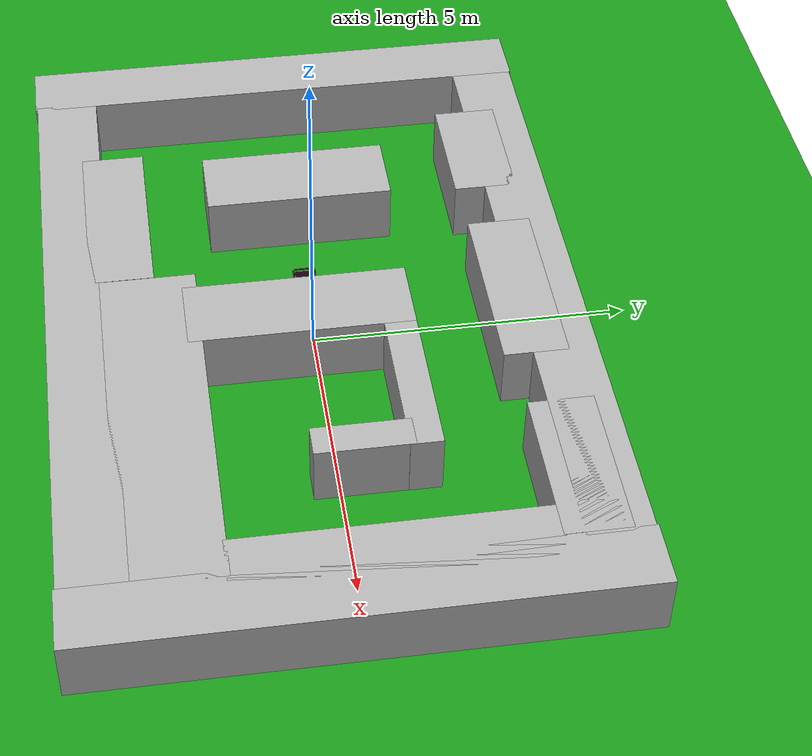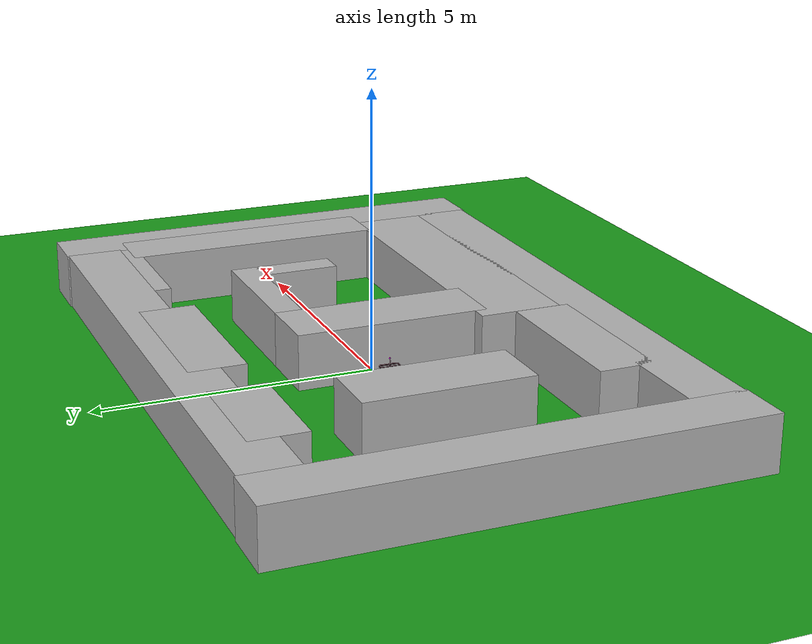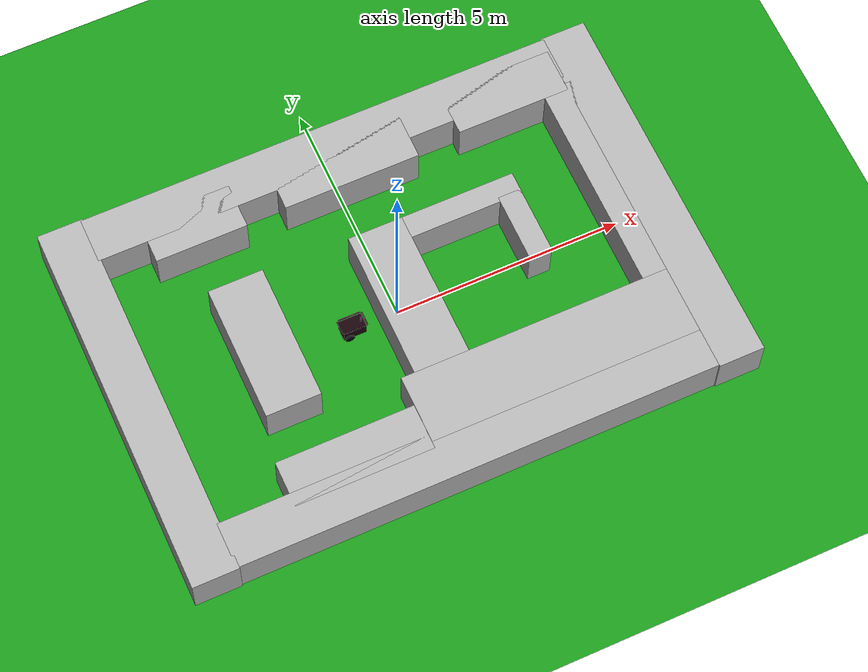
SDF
<?xml version="1.0" ?>
<sdf version='1.9'>
  <world name='empty'>
    <include>
            <uri>home/kifelix/alexx_ws/src/alexx_py/robot/bb_alexx.sdf</uri> <!-- Caminho relativo -->
            <pose>-1 0 0.2 0 0 0</pose> <!-- Ajuste a posição inicial -->
    </include>
    <scene>
      <ambient>0.4 0.4 0.4 1</ambient>
      <background>0.6 0.8 0.6 1</background>
      <shadows>true</shadows>
    </scene>
    <gravity>0 0 -9.8</gravity>
    <plugin name='ignition::gazebo::systems::Physics' filename='libignition-gazebo-physics-system.so'/>
    <plugin name='ignition::gazebo::systems::UserCommands' filename='libignition-gazebo-user-commands-system.so'/>
    <plugin name='ignition::gazebo::systems::SceneBroadcaster' filename='libignition-gazebo-scene-broadcaster-system.so'/>
    <plugin name='ignition::gazebo::systems::Sensors' filename='libignition-gazebo-sensors-system.so'>
      <render_engine>ogre2</render_engine>
    </plugin>
        <model name="ground_plane">
      <static>true</static>
      <link name="link">
        <collision name="collision">
          <geometry><plane><normal>0 0 1</normal><size>50 50</size></plane></geometry>
        </collision>
        <visual name="visual">
          <geometry><plane><normal>0 0 1</normal><size>50 50</size></plane></geometry>
          <material>
            <ambient>0.1 0.4 0.1 1</ambient>
            <diffuse>0.1 0.6 0.1 1</diffuse>
            <specular>0 0 0 1</specular>
          </material>
        </visual>
      </link>
    </model>
    <model name='box'>
      <pose>5.69981 0 0.5 0 -0 0</pose>
      <link name='box_link'>
        <inertial>
          <inertia>
            <ixx>0.16666</ixx>
            <ixy>0</ixy>
            <ixz>0</ixz>
            <iyy>0.16666</iyy>
            <iyz>0</iyz>
            <izz>0.16666</izz>
          </inertia>
          <mass>1</mass>
          <pose>0 0 0 0 -0 0</pose>
        </inertial>
        <collision name='box_collision'>
          <geometry>
            <box>
              <size>1 8.3 1</size>
            </box>
          </geometry>
          <surface>
            <friction>
              <ode/>
            </friction>
            <bounce/>
            <contact/>
          </surface>
        </collision>
        <visual name='box_visual'>
          <geometry>
            <box>
              <size>1 8.3 1</size>
            </box>
          </geometry>
          <material>
            <ambient>0.3 0.3 0.3 1</ambient>
            <diffuse>0.7 0.7 0.7 1</diffuse>
            <specular>1 1 1 1</specular>
          </material>
        </visual>
        <pose>0 0 0 0 -0 0</pose>
        <enable_wind>false</enable_wind>
      </link>
      <static>false</static>
      <self_collide>false</self_collide>
    </model>
    <model name='box_0'>
      <pose>0 3.62417 0.5 0 -0 0</pose>
      <link name='box_link'>
        <inertial>
          <inertia>
            <ixx>0.16666</ixx>
            <ixy>0</ixy>
            <ixz>0</ixz>
            <iyy>0.16666</iyy>
            <iyz>0</iyz>
            <izz>0.16666</izz>
          </inertia>
          <mass>1</mass>
          <pose>0 0 0 0 -0 0</pose>
        </inertial>
        <collision name='box_collision'>
          <geometry>
            <box>
              <size>10.5 1 1</size>
            </box>
          </geometry>
          <surface>
            <friction>
              <ode/>
            </friction>
            <bounce/>
            <contact/>
          </surface>
        </collision>
        <visual name='box_visual'>
          <geometry>
            <box>
              <size>10.5 1 1</size>
            </box>
          </geometry>
          <material>
            <ambient>0.3 0.3 0.3 1</ambient>
            <diffuse>0.7 0.7 0.7 1</diffuse>
            <specular>1 1 1 1</specular>
          </material>
        </visual>
        <pose>0 0 0 0 -0 0</pose>
        <enable_wind>false</enable_wind>
      </link>
      <static>false</static>
      <self_collide>false</self_collide>
    </model>
    <model name='box_1'>
      <pose>-5.69083 0 0.5 0 -0 0</pose>
      <link name='box_link'>
        <inertial>
          <inertia>
            <ixx>0.16666</ixx>
            <ixy>0</ixy>
            <ixz>0</ixz>
            <iyy>0.16666</iyy>
            <iyz>0</iyz>
            <izz>0.16666</izz>
          </inertia>
          <mass>1</mass>
          <pose>0 0 0 0 -0 0</pose>
        </inertial>
        <collision name='box_collision'>
          <geometry>
            <box>
              <size>1 8.3 1</size>
            </box>
          </geometry>
          <surface>
            <friction>
              <ode/>
            </friction>
            <bounce/>
            <contact/>
          </surface>
        </collision>
        <visual name='box_visual'>
          <geometry>
            <box>
              <size>1 8.3 1</size>
            </box>
          </geometry>
          <material>
            <ambient>0.3 0.3 0.3 1</ambient>
            <diffuse>0.7 0.7 0.7 1</diffuse>
            <specular>1 1 1 1</specular>
          </material>
        </visual>
        <pose>0 0 0 0 -0 0</pose>
        <enable_wind>false</enable_wind>
      </link>
      <static>false</static>
      <self_collide>false</self_collide>
    </model>
    <model name='box_2'>
      <pose>0 -3.62085 0.5 0 -0 0</pose>
      <link name='box_link'>
        <inertial>
          <inertia>
            <ixx>0.16666</ixx>
            <ixy>0</ixy>
            <ixz>0</ixz>
            <iyy>0.16666</iyy>
            <iyz>0</iyz>
            <izz>0.16666</izz>
          </inertia>
          <mass>1</mass>
          <pose>0 0 0 0 -0 0</pose>
        </inertial>
        <collision name='box_collision'>
          <geometry>
            <box>
              <size>10.5 1 1</size>
            </box>
          </geometry>
          <surface>
            <friction>
              <ode/>
            </friction>
            <bounce/>
            <contact/>
          </surface>
        </collision>
        <visual name='box_visual'>
          <geometry>
            <box>
              <size>10.5 1 1</size>
            </box>
          </geometry>
          <material>
            <ambient>0.3 0.3 0.3 1</ambient>
            <diffuse>0.7 0.7 0.7 1</diffuse>
            <specular>1 1 1 1</specular>
          </material>
        </visual>
        <pose>0 0 0 0 -0 0</pose>
        <enable_wind>false</enable_wind>
      </link>
      <static>false</static>
      <self_collide>false</self_collide>
    </model>
    <model name='box_3'>
      <pose>2.28939 -2.51854 0.5 0 -0 0</pose>
      <link name='box_link'>
        <inertial>
          <inertia>
            <ixx>0.16666</ixx>
            <ixy>0</ixy>
            <ixz>0</ixz>
            <iyy>0.16666</iyy>
            <iyz>0</iyz>
            <izz>0.16666</izz>
          </inertia>
          <mass>1</mass>
          <pose>0 0 0 0 -0 0</pose>
        </inertial>
        <collision name='box_collision'>
          <geometry>
            <box>
              <size>6 1.5 1</size>
            </box>
          </geometry>
          <surface>
            <friction>
              <ode/>
            </friction>
            <bounce/>
            <contact/>
          </surface>
        </collision>
        <visual name='box_visual'>
          <geometry>
            <box>
              <size>6 1.5 1</size>
            </box>
          </geometry>
          <material>
            <ambient>0.3 0.3 0.3 1</ambient>
            <diffuse>0.7 0.7 0.7 1</diffuse>
            <specular>1 1 1 1</specular>
          </material>
        </visual>
        <pose>0 0 0 0 -0 0</pose>
        <enable_wind>false</enable_wind>
      </link>
      <static>false</static>
      <self_collide>false</self_collide>
    </model>
    <model name='box_4'>
      <pose>-2.21527 -2.91204 0.5 0 -0 0</pose>
      <link name='box_link'>
        <inertial>
          <inertia>
            <ixx>0.16666</ixx>
            <ixy>0</ixy>
            <ixz>0</ixz>
            <iyy>0.16666</iyy>
            <iyz>0</iyz>
            <izz>0.16666</izz>
          </inertia>
          <mass>1</mass>
          <pose>0 0 0 0 -0 0</pose>
        </inertial>
        <collision name='box_collision'>
          <geometry>
            <box>
              <size>3 1 1</size>
            </box>
          </geometry>
          <surface>
            <friction>
              <ode/>
            </friction>
            <bounce/>
            <contact/>
          </surface>
        </collision>
        <visual name='box_visual'>
          <geometry>
            <box>
              <size>3 1 1</size>
            </box>
          </geometry>
          <material>
            <ambient>0.3 0.3 0.3 1</ambient>
            <diffuse>0.7 0.7 0.7 1</diffuse>
            <specular>1 1 1 1</specular>
          </material>
        </visual>
        <pose>0 0 0 0 -0 0</pose>
        <enable_wind>false</enable_wind>
      </link>
      <static>false</static>
      <self_collide>false</self_collide>
    </model>
    <model name='box_5'>
      <pose>-3.17475 3.13281 0.5 0 -0 0</pose>
      <link name='box_link'>
        <inertial>
          <inertia>
            <ixx>0.16666</ixx>
            <ixy>0</ixy>
            <ixz>0</ixz>
            <iyy>0.16666</iyy>
            <iyz>0</iyz>
            <izz>0.16666</izz>
          </inertia>
          <mass>1</mass>
          <pose>0 0 0 0 -0 0</pose>
        </inertial>
        <collision name='box_collision'>
          <geometry>
            <box>
              <size>2 1 1</size>
            </box>
          </geometry>
          <surface>
            <friction>
              <ode/>
            </friction>
            <bounce/>
            <contact/>
          </surface>
        </collision>
        <visual name='box_visual'>
          <geometry>
            <box>
              <size>2 1 1</size>
            </box>
          </geometry>
          <material>
            <ambient>0.3 0.3 0.3 1</ambient>
            <diffuse>0.7 0.7 0.7 1</diffuse>
            <specular>1 1 1 1</specular>
          </material>
        </visual>
        <pose>0 0 0 0 -0 0</pose>
        <enable_wind>false</enable_wind>
      </link>
      <static>false</static>
      <self_collide>false</self_collide>
    </model>
    <model name='box_6'>
      <pose>0.199072 3.17631 0.5 0 -0 0</pose>
      <link name='box_link'>
        <inertial>
          <inertia>
            <ixx>0.16666</ixx>
            <ixy>0</ixy>
            <ixz>0</ixz>
            <iyy>0.16666</iyy>
            <iyz>0</iyz>
            <izz>0.16666</izz>
          </inertia>
          <mass>1</mass>
          <pose>0 0 0 0 -0 0</pose>
        </inertial>
        <collision name='box_collision'>
          <geometry>
            <box>
              <size>3 1 1</size>
            </box>
          </geometry>
          <surface>
            <friction>
              <ode/>
            </friction>
            <bounce/>
            <contact/>
          </surface>
        </collision>
        <visual name='box_visual'>
          <geometry>
            <box>
              <size>3 1 1</size>
            </box>
          </geometry>
          <material>
            <ambient>0.3 0.3 0.3 1</ambient>
            <diffuse>0.7 0.7 0.7 1</diffuse>
            <specular>1 1 1 1</specular>
          </material>
        </visual>
        <pose>0 0 0 0 -0 0</pose>
        <enable_wind>false</enable_wind>
      </link>
      <static>false</static>
      <self_collide>false</self_collide>
    </model>
    <model name='box_7'>
      <pose>3.94814 3.32009 0.5 0 -0 0</pose>
      <link name='box_link'>
        <inertial>
          <inertia>
            <ixx>0.16666</ixx>
            <ixy>0</ixy>
            <ixz>0</ixz>
            <iyy>0.16666</iyy>
            <iyz>0</iyz>
            <izz>0.16666</izz>
          </inertia>
          <mass>1</mass>
          <pose>0 0 0 0 -0 0</pose>
        </inertial>
        <collision name='box_collision'>
          <geometry>
            <box>
              <size>2.5 1 1</size>
            </box>
          </geometry>
          <surface>
            <friction>
              <ode/>
            </friction>
            <bounce/>
            <contact/>
          </surface>
        </collision>
        <visual name='box_visual'>
          <geometry>
            <box>
              <size>2.5 1 1</size>
            </box>
          </geometry>
          <material>
            <ambient>0.3 0.3 0.3 1</ambient>
            <diffuse>0.7 0.7 0.7 1</diffuse>
            <specular>1 1 1 1</specular>
          </material>
        </visual>
        <pose>0 0 0 0 -0 0</pose>
        <enable_wind>false</enable_wind>
      </link>
      <static>false</static>
      <self_collide>false</self_collide>
    </model>
    <model name='box_8'>
      <pose>5.16182 0.578335 0.5 0 -0 0</pose>
      <link name='box_link'>
        <inertial>
          <inertia>
            <ixx>0.16666</ixx>
            <ixy>0</ixy>
            <ixz>0</ixz>
            <iyy>0.16666</iyy>
            <iyz>0</iyz>
            <izz>0.16666</izz>
          </inertia>
          <mass>1</mass>
          <pose>0 0 0 0 -0 0</pose>
        </inertial>
        <collision name='box_collision'>
          <geometry>
            <box>
              <size>1 4.8 1</size>
            </box>
          </geometry>
          <surface>
            <friction>
              <ode/>
            </friction>
            <bounce/>
            <contact/>
          </surface>
        </collision>
        <visual name='box_visual'>
          <geometry>
            <box>
              <size>1 4.8 1</size>
            </box>
          </geometry>
          <material>
            <ambient>0.3 0.3 0.3 1</ambient>
            <diffuse>0.7 0.7 0.7 1</diffuse>
            <specular>1 1 1 1</specular>
          </material>
        </visual>
        <pose>0 0 0 0 -0 0</pose>
        <enable_wind>false</enable_wind>
      </link>
      <static>false</static>
      <self_collide>false</self_collide>
    </model>
    <model name='box_9'>
      <pose>0.181858 -0.246529 0.5 0 -0 0</pose>
      <link name='box_link'>
        <inertial>
          <inertia>
            <ixx>0.16666</ixx>
            <ixy>0</ixy>
            <ixz>0</ixz>
            <iyy>0.16666</iyy>
            <iyz>0</iyz>
            <izz>0.16666</izz>
          </inertia>
          <mass>1</mass>
          <pose>0 0 0 0 -0 0</pose>
        </inertial>
        <collision name='box_collision'>
          <geometry>
            <box>
              <size>1.2 3.5 1</size>
            </box>
          </geometry>
          <surface>
            <friction>
              <ode/>
            </friction>
            <bounce/>
            <contact/>
          </surface>
        </collision>
        <visual name='box_visual'>
          <geometry>
            <box>
              <size>1.2 3.5 1</size>
            </box>
          </geometry>
          <material>
            <ambient>0.3 0.3 0.3 1</ambient>
            <diffuse>0.7 0.7 0.7 1</diffuse>
            <specular>1 1 1 1</specular>
          </material>
        </visual>
        <pose>0 0 0 0 -0 0</pose>
        <enable_wind>false</enable_wind>
      </link>
      <static>false</static>
      <self_collide>false</self_collide>
    </model>
    <model name='box_10'>
      <pose>-2.88513 0.073078 0.5 0 -0 0</pose>
      <link name='box_link'>
        <inertial>
          <inertia>
            <ixx>0.16666</ixx>
            <ixy>0</ixy>
            <ixz>0</ixz>
            <iyy>0.16666</iyy>
            <iyz>0</iyz>
            <izz>0.16666</izz>
          </inertia>
          <mass>1</mass>
          <pose>0 0 0 0 -0 0</pose>
        </inertial>
        <collision name='box_collision'>
          <geometry>
            <box>
              <size>1.2 3 1</size>
            </box>
          </geometry>
          <surface>
            <friction>
              <ode/>
            </friction>
            <bounce/>
            <contact/>
          </surface>
        </collision>
        <visual name='box_visual'>
          <geometry>
            <box>
              <size>1.2 3 1</size>
            </box>
          </geometry>
          <material>
            <ambient>0.3 0.3 0.3 1</ambient>
            <diffuse>0.7 0.7 0.7 1</diffuse>
            <specular>1 1 1 1</specular>
          </material>
        </visual>
        <pose>0 0 0 0 -0 0</pose>
        <enable_wind>false</enable_wind>
      </link>
      <static>false</static>
      <self_collide>false</self_collide>
    </model>
    <model name='box_11'>
      <pose>3.0247 0.351213 0.5 0 -0 0</pose>
      <link name='box_link'>
        <inertial>
          <inertia>
            <ixx>0.16666</ixx>
            <ixy>0</ixy>
            <ixz>0</ixz>
            <iyy>0.16666</iyy>
            <iyz>0</iyz>
            <izz>0.16666</izz>
          </inertia>
          <mass>1</mass>
          <pose>0 0 0 0 -0 0</pose>
        </inertial>
        <collision name='box_collision'>
          <geometry>
            <box>
              <size>0.5 1.5 1</size>
            </box>
          </geometry>
          <surface>
            <friction>
              <ode/>
            </friction>
            <bounce/>
            <contact/>
          </surface>
        </collision>
        <visual name='box_visual'>
          <geometry>
            <box>
              <size>0.5 1.5 1</size>
            </box>
          </geometry>
          <material>
            <ambient>0.3 0.3 0.3 1</ambient>
            <diffuse>0.7 0.7 0.7 1</diffuse>
            <specular>1 1 1 1</specular>
          </material>
        </visual>
        <pose>0 0 0 0 -0 0</pose>
        <enable_wind>false</enable_wind>
      </link>
      <static>false</static>
      <self_collide>false</self_collide>
    </model>
    <model name='box_12'>
      <pose>2.03053 1.25195 0.5 0 -0 0</pose>
      <link name='box_link'>
        <inertial>
          <inertia>
            <ixx>0.16666</ixx>
            <ixy>0</ixy>
            <ixz>0</ixz>
            <iyy>0.16666</iyy>
            <iyz>0</iyz>
            <izz>0.16666</izz>
          </inertia>
          <mass>1</mass>
          <pose>0 0 0 0 -0 0</pose>
        </inertial>
        <collision name='box_collision'>
          <geometry>
            <box>
              <size>2.5 0.5 1</size>
            </box>
          </geometry>
          <surface>
            <friction>
              <ode/>
            </friction>
            <bounce/>
            <contact/>
          </surface>
        </collision>
        <visual name='box_visual'>
          <geometry>
            <box>
              <size>2.5 0.5 1</size>
            </box>
          </geometry>
          <material>
            <ambient>0.3 0.3 0.3 1</ambient>
            <diffuse>0.7 0.7 0.7 1</diffuse>
            <specular>1 1 1 1</specular>
          </material>
        </visual>
        <pose>0 0 0 0 -0 0</pose>
        <enable_wind>false</enable_wind>
      </link>
      <static>false</static>
      <self_collide>false</self_collide>
    </model>
    <light name='sun' type='directional'>
      <pose>0 0 10 0 -0 0</pose>
      <cast_shadows>true</cast_shadows>
      <intensity>1</intensity>
      <direction>-0.5 0.1 -1</direction>
      <diffuse>0.8 0.8 0.8 1</diffuse>
      <specular>0.2 0.2 0.2 1</specular>
      <attenuation>
        <range>10</range>
        <linear>1</linear>
        <constant>1</constant>
        <quadratic>0</quadratic>
      </attenuation>
      <spot>
        <inner_angle>0</inner_angle>
        <outer_angle>0</outer_angle>
        <falloff>0</falloff>
      </spot>
    </light>
  </world>
</sdf>

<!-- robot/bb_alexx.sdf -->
<sdf version='1.9'>
  <model name='Axe-LL' canonical_link="chassi_link">

    <!-- Frames auxiliares -->
    <frame name="caster_frame" attached_to="chassi_link">
        <pose>0.18 0 -0.17 0 0 0</pose>
    </frame>
    <frame name="lidar_frame" attached_to='chassi_link'>
    <pose>0.8 0 0.5 0 0 0</pose>
</frame>

    <!-- Link do chassi -->
    <link name='chassi_link'>
      <visual name='visual'>
        <geometry>
          <mesh>
            <uri>file:///home/kifelix/Blender Objetos/prototipo 1 (Axe-LL_ Adaptable Xenon Explorer_ Logistics Line-follower)/Chassi_sem_roda.dae</uri>
          </mesh>
        </geometry>
      </visual>
      <collision name='collision'>
        <geometry>
          <mesh>
            <uri>file:///home/kifelix/Blender Objetos/prototipo 1 (Axe-LL_ Adaptable Xenon Explorer_ Logistics Line-follower)/Chassi_sem_roda.dae</uri>
          </mesh>
        </geometry>
      </collision>
      <pose>0 0 0 0 0 0</pose>
      <inertial>
        <pose>0 0 0 0 0 0</pose>
        <mass>10.0</mass>
        <inertia>
          <ixx>0.15</ixx>
          <ixy>0</ixy>
          <ixz>0</ixz>
          <iyy>0.2833</iyy>
          <iyz>0</iyz>
          <izz>0.2833</izz>
        </inertia>
      </inertial>
      <enable_wind>false</enable_wind>
      <sensor name="imu_sensor" type="imu">
	  <pose>0 0 0 0 0 0</pose>
	  <topic>imu</topic>
	  <imu>
	    <angular_velocity>
	      <noise>
		<type>gaussian</type>
		<mean>0.0</mean>
		<stddev>0.01</stddev>
	      </noise>
	    </angular_velocity>
	    <linear_acceleration>
	      <noise>
		<type>gaussian</type>
		<mean>0.0</mean>
		<stddev>0.01</stddev>
	      </noise>
	    </linear_acceleration>
	    <orientation>
	      <noise>
		<type>gaussian</type>
		<mean>0.0</mean>
		<stddev>0.01</stddev>
	      </noise>
	    </orientation>
	  </imu>
	  <plugin filename="libignition-gazebo-imu-system.so"
          name="ignition::gazebo::systems::Imu">
      </plugin>
	</sensor>
    </link>

    <!-- Link roda direita -->
    <link name='rodaD_link'>
      <visual name='visual'>
        <geometry>
          <mesh>
            <uri>file:///home/kifelix/Blender Objetos/prototipo 1 (Axe-LL_ Adaptable Xenon Explorer_ Logistics Line-follower)/roda(geral).dae</uri>
          </mesh>
        </geometry>
      </visual>
      <collision name='collision'>
        <geometry>
          <mesh>
            <uri>file:///home/kifelix/Blender Objetos/prototipo 1 (Axe-LL_ Adaptable Xenon Explorer_ Logistics Line-follower)/roda(geral).dae</uri>
          </mesh>
        </geometry>
      </collision>
      <pose>-0.1264 -0.1751 -0.1 0 0 0</pose>
      <inertial>
        <pose>0 0 0 0 0 0</pose>
        <mass>8</mass>
        <inertia>
	    <ixx>0.0217</ixx>
	    <ixy>0</ixy>
	    <ixz>0</ixz>
	    <iyy>0.04</iyy>
	    <iyz>0</iyz>
	    <izz>0.0217</izz>
        </inertia>
      </inertial>
      <enable_wind>false</enable_wind>
    </link>

    <!-- Link roda Esquerda -->
    <link name='rodaE_link'>
      <visual name='visual'>
        <geometry>
          <mesh>
            <uri>file:///home/kifelix/Blender Objetos/prototipo 1 (Axe-LL_ Adaptable Xenon Explorer_ Logistics Line-follower)/roda(geral).dae</uri>
          </mesh>
        </geometry>
      </visual>
      <collision name='collision'>
        <geometry>
          <mesh>
            <uri>file:///home/kifelix/Blender Objetos/prototipo 1 (Axe-LL_ Adaptable Xenon Explorer_ Logistics Line-follower)/roda(geral).dae</uri>
          </mesh>
        </geometry>
      </collision>
      <pose>-0.1264 0.1751 -0.1 0 0 0</pose>
      <inertial>
        <pose>0 0 0 0 0 0</pose>
        <mass>8</mass>
        <inertia>
	    <ixx>0.0217</ixx>
	    <ixy>0</ixy>
	    <ixz>0</ixz>
	    <iyy>0.04</iyy>
	    <iyz>0</iyz>
	    <izz>0.0217</izz>
        </inertia>
      </inertial>
      <enable_wind>false</enable_wind>
    </link>

    <!-- Roda Boba -->
    <link name="caster">
        <pose relative_to="caster_frame"/>
        <inertial>
          <mass>1</mass>
          <inertia>
            <ixx>0.016</ixx><ixy>0</ixy><ixz>0</ixz>
            <iyy>0.016</iyy><iyz>0</iyz><izz>0.016</izz>
          </inertia>
        </inertial>
        <visual name="visual">
          <geometry><sphere><radius>0.027</radius></sphere></geometry>
          <material><ambient>0 1 0 1</ambient><diffuse>0 1 0 1</diffuse><specular>0 1 0 1</specular></material>
        </visual>
        <collision name="collision">
          <geometry><sphere><radius>0.027</radius></sphere></geometry>
        </collision>
    </link>

	<link name='link_lidar'>
                <pose relative_to="camera_rgb_0_link">0 0 0.015 0 0 0</pose>
                <inertial>
                    <mass>0.1</mass>
                    <inertia>
                        <ixx>0</ixx>
                        <ixy>0</ixy>
                        <ixz>0</ixz>
                        <iyy>0</iyy>
                        <iyz>0</iyz>
                        <izz>0</izz>
                    </inertia>
                </inertial>
                <visual name='visual'>
                    <geometry>
                        <cylinder>
                            <radius>0.005</radius>
                            <length>0.01</length>
                        </cylinder>
                    </geometry>
                    <material>
                        <ambient>1.0 0.0 0.0 1</ambient>
                        <diffuse>1.0 0.0 0.0 1</diffuse>
                        <specular>1.0 0.0 0.0 1</specular>
                    </material>
                </visual>
                <collision name='collision'>
                    <geometry>
                        <cylinder>
                            <radius>0.005</radius>
                            <length>0.01</length>
                        </cylinder>
                    </geometry>
                </collision>
                <sensor name='gpu_lidar' type='gpu_lidar'>"
		    <pose relative_to='link_lidar'>0 0 0 0 0 0</pose>
		    <topic>lidar</topic>
		    <update_rate>10</update_rate>
		    <ray>
			<scan>
			    <horizontal>
				<samples>640</samples>
				<resolution>1</resolution>
				<min_angle>-1.396263</min_angle>
				<max_angle>1.396263</max_angle>
			    </horizontal>
			    <vertical>
				<samples>1</samples>
				<resolution>0.01</resolution>
				<min_angle>0</min_angle>
				<max_angle>0</max_angle>
			    </vertical>
			</scan>
			<range>
			    <min>0.08</min>
			    <max>10.0</max>
			    <resolution>0.01</resolution>
			</range>
		    </ray>
		    <always_on>1</always_on>
		    <visualize>true</visualize>
		</sensor>
            </link>
	<link name="modulo_sensor_0_link">
	  <visual name="visual">
	    <geometry>
	      <mesh>
		<uri>file:///home/kifelix/Blender Objetos/prototipo 1 (Axe-LL_ Adaptable Xenon Explorer_ Logistics Line-follower)/modulo_sensor_0.dae</uri>
	      </mesh>
	    </geometry>
	  </visual>
	  <collision name="collision">
	    <geometry>
	      <mesh>
		<uri>file:///home/kifelix/Blender Objetos/prototipo 1 (Axe-LL_ Adaptable Xenon Explorer_ Logistics Line-follower)/modulo_sensor_0.dae</uri>
	      </mesh>
	    </geometry>
	  </collision>
	  <pose>0.226734 0 -0.155 3.14159 0.064482 3.14159</pose>
	  <inertial>
	    <pose>0 0 0 0 0 0</pose>
	    <mass>0.1</mass>
	    <inertia>
	      <ixx>1</ixx>
	      <ixy>0</ixy>
	      <ixz>0</ixz>
	      <iyy>1</iyy>
	      <iyz>0</iyz>
	      <izz>1</izz>
	    </inertia>
	  </inertial>
	  <enable_wind>false</enable_wind>
	</link>

    <!-- Link câmera RGB -->
    <link name='camera_rgb_0_link'>
      <visual name='visual'>
        <geometry>
          <mesh>
            <uri>file:///home/kifelix/Blender Objetos/prototipo 1 (Axe-LL_ Adaptable Xenon Explorer_ Logistics Line-follower)/camera_rgb.dae</uri>
          </mesh>
        </geometry>
      </visual>
      <collision name='collision'>
        <geometry>
          <mesh>
            <uri>file:///home/kifelix/Blender Objetos/prototipo 1 (Axe-LL_ Adaptable Xenon Explorer_ Logistics Line-follower)/camera_rgb.dae</uri>
          </mesh>
        </geometry>
      </collision>
      <pose>0.19 0 0.315 0 0.5235987756 0</pose>
      <inertial>
        <pose>0 0 0 0 0 0</pose>
        <mass>0.1</mass>
        <inertia>
          <ixx>1</ixx>
          <ixy>0</ixy>
          <ixz>0</ixz>
          <iyy>1</iyy>
          <iyz>0</iyz>
          <izz>1</izz>
        </inertia>
      </inertial>
      <enable_wind>false</enable_wind>

      <sensor name="camera_sensor" type="camera">

    	<pose>0 0 0 0 0 0</pose>
    	<topic>camera</topic>
    	<camera>
      	<horizontal_fov>1.047</horizontal_fov>
      	<image>
        	<width>640</width>
        	<height>480</height>
        	<format>R8G8B8</format>
      	</image>
      	<clip>
        	<near>0.1</near>
        	<far>100</far>
      	</clip>
    	</camera>
    	<update_rate>60</update_rate>

  	</sensor>
    </link>

    <!-- Joints revolute para rodas girarem -->
    <joint name="junta_roda_esquerda" type="revolute">
        <pose relative_to="rodaE_link"/>
        <parent>chassi_link</parent>
        <child>rodaE_link</child>
        <axis>
          <xyz expressed_in="__model__">0 1 0</xyz>
          <limit><lower>-1.79769e+308</lower><upper>1.79769e+308</upper></limit>
        </axis>
        <dynamics>
	  <damping>0.1</damping>
	  <friction>0.01</friction> <!-- atrito no eixo -->
	</dynamics>
    </joint>

    <joint name="junta_roda_direita" type="revolute">
        <pose relative_to="rodaD_link"/>
        <parent>chassi_link</parent>
        <child>rodaD_link</child>
        <axis>
          <xyz expressed_in="__model__">0 1 0</xyz>
          <limit><lower>-1.79769e+308</lower><upper>1.79769e+308</upper></limit>
        </axis>
        <dynamics>
	   <damping>0.1</damping>
	   <friction>0.01</friction> <!-- atrito no eixo -->
	</dynamics>

    </joint>

    <joint name="caster_wheel" type="ball">
        <parent>chassi_link</parent>
        <child>caster</child>
        <dynamics>
	   <damping>0.1</damping>
	   <friction>0.01</friction> <!-- atrito no eixo -->
	</dynamics>
    </joint>

    <!-- Joints fixos para prender sensor e câmera ao chassi -->
    <joint name='joint_modulo_sensor_0' type='fixed'>
      <parent>chassi_link</parent>
      <child>modulo_sensor_0_link</child>
      <pose>0 0 0 0 0 0</pose>
    </joint>

    <joint name='joint_camera_rgb_0' type='fixed'>
      <parent>chassi_link</parent>
      <child>camera_rgb_0_link</child>
      <pose>0 0 0 0 0 0</pose>
    </joint>

    <joint name='joint_lidar' type='fixed'>
      <parent>joint_camera_rgb_0</parent>
      <child>link_lidar</child>
      <pose>0 0 0 0 0 0</pose>
    </joint>

    <pose>-0 0 0.6746 0.009576 -0.027528 0.012258</pose>
    <static>false</static>
    <self_collide>false</self_collide>

    <!-- Plugins do modelo -->
      <plugin filename="libignition-gazebo-diff-drive-system.so" name="ignition::gazebo::systems::DiffDrive">
        <left_joint>junta_roda_esquerda</left_joint>
        <right_joint>junta_roda_direita</right_joint>
        <wheel_separation>0.3502</wheel_separation>
        <wheel_radius>0.1</wheel_radius>
        <odom_publish_frequency>60</odom_publish_frequency>
        <topic>/cmd_vel</topic>
        <odom_topic>/odom</odom_topic>
      </plugin>

      <plugin filename="libignition-gazebo-triggered-publisher-system.so" name="ignition::gazebo::systems::TriggeredPublisher">
        <input type="ignition.msgs.Boolean" topic="/wall/touched">
          <match>data: true</match>
        </input>
        <output type="ignition.msgs.Twist" topic="/cmd_vel">
          linear: {x: 0.0}, angular: {z: 0.0}
        </output>
      </plugin>
      <plugin filename="libignition-gazebo-imu-system.so"
          name="ignition::gazebo::systems::Imu">
      </plugin> <!-- esse é o certo do IMU-->
      <plugin filename="ignition-gazebo-joint-state-publisher-system" name="ignition::gazebo::systems::JointStatePublisher"/>
  </model>
</sdf>
